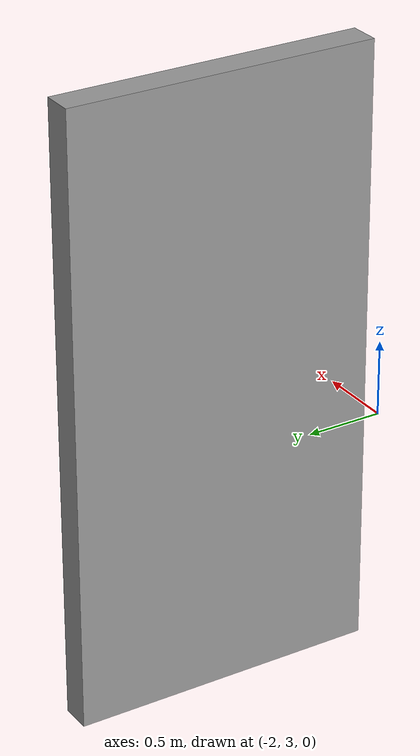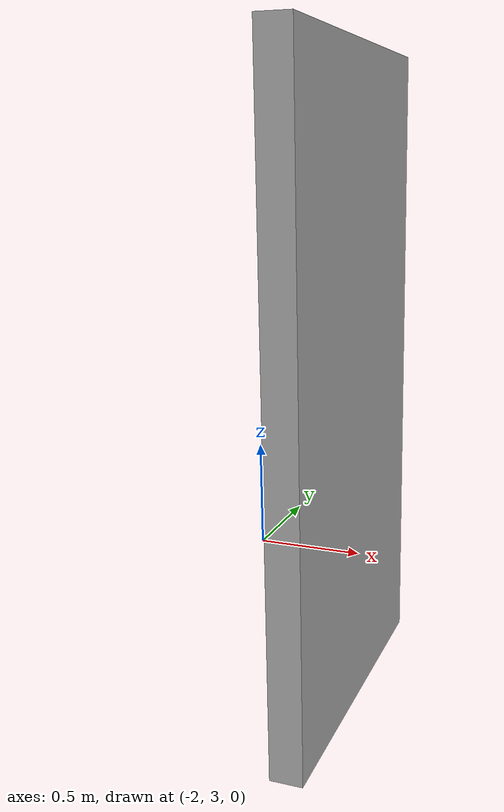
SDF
<?xml version="1.0" ?>
<sdf version="1.6">
  <model name='wall'>
    <pose frame=''>-1.96096 4.14616 0.5 0 -0 0</pose>
    <link name='link'>
      <inertial>
        <mass>1</mass>
        <inertia>
          <ixx>0.166667</ixx>
          <ixy>0</ixy>
          <ixz>0</ixz>
          <iyy>0.166667</iyy>
          <iyz>0</iyz>
          <izz>0.166667</izz>
        </inertia>
      </inertial>
      <collision name='collision'>
        <geometry>
          <box>
            <size>0.2 2 4</size>
          </box>
        </geometry>
        <max_contacts>10</max_contacts>
        <surface>
          <contact>
            <ode/>
          </contact>
          <bounce/>
          <friction>
            <torsional>
              <ode/>
            </torsional>
            <ode/>
          </friction>
        </surface>
      </collision>
      <visual name='visual'>
        <geometry>
          <box>
            <size>0.2 2 4</size>
          </box>
        </geometry>
        <material>
          <script>
            <name>Gazebo/Grey</name>
            <uri>file://media/materials/scripts/gazebo.material</uri>
          </script>
        </material>
      </visual>
      <self_collide>0</self_collide>
      <kinematic>0</kinematic>
    </link>
  </model>
</sdf>
